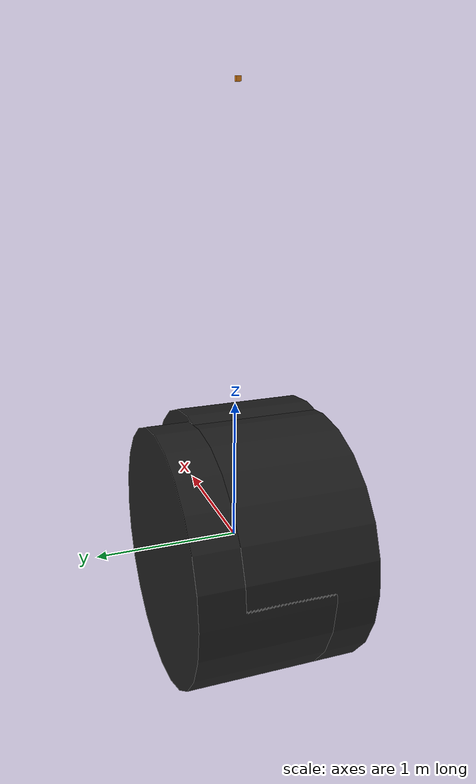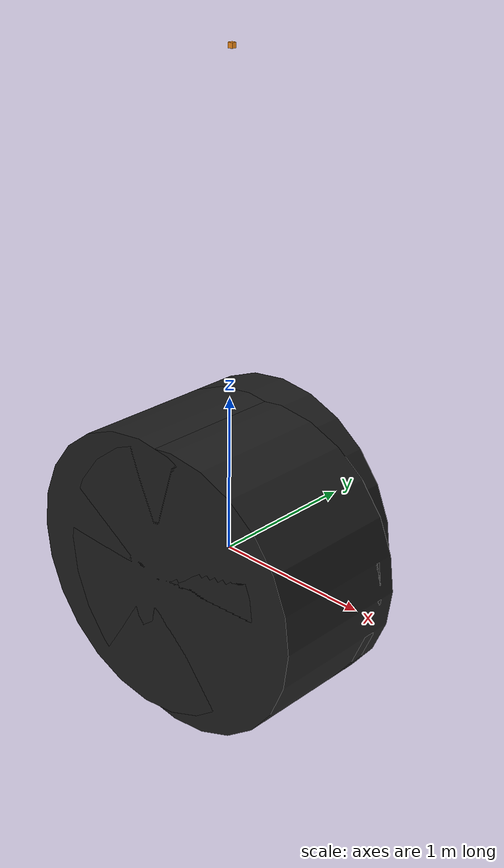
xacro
<?xml version='1.0'?>

<robot name="skidbot" xmlns:xacro="http://www.ros.org/wiki/xacro">

  <xacro:include filename="$(find gcamp_gazebo)/urdf/stella_bot.gazebo" />

  <link name="base_link"></link>

  <joint name="base_link_joint" type="fixed">
    <origin xyz="0 0 0" rpy="0 0 0" />
    <parent link="base_link"/>
    <child link="chassis" />
  </joint>

  <link name='chassis'>
    <pose>0 0 0.1 0 0 0</pose>

    <inertial>
      <mass value="15.0"/>
      <origin xyz="0.0 0 0" rpy=" 0 0 0"/>
      <inertia ixx="0.1" ixy="0" ixz="0" iyy="0.1" iyz="0" izz="0.1" />
    </inertial>

    <collision name='collision'>
      <origin xyz="0 0 0" rpy=" 0 0 0"/>
      <geometry>
        <box size=".44 .38 .204"/>
      </geometry>
    </collision>

    <visual name='chassis_visual'>
      <origin xyz="0 0 0" rpy=" 0 0 0"/>
      <geometry>
        <box size=".44 .38 .204"/>
      </geometry>
    </visual>
  </link>

  <link name="front_left_wheel">
    <inertial>
      <mass value="8.0"/>
      <origin xyz="0.0 0 0" rpy=" 0 1.5707 1.5707"/>
      <inertia ixx="0.1" ixy="0" ixz="0" iyy="0.1" iyz="0" izz="0.1" />
    </inertial>

    <collision>
      <origin xyz="0.0 0 0" rpy=" 0 1.5707 1.5707"/>
      <geometry>
        <cylinder length="0.05" radius="0.1"/>
      </geometry>
    </collision>
  </link>

  <link name="back_left_wheel">
    <inertial>
      <mass value="8.0"/>
      <origin xyz="0.0 0 0" rpy=" 0 1.5707 1.5707"/>
      <inertia ixx="0.1" ixy="0" ixz="0" iyy="0.1" iyz="0" izz="0.1" />
    </inertial>

    <collision>
      <origin xyz="0.0 0 0" rpy=" 0 1.5707 1.5707"/>
      <geometry>
        <cylinder length="0.09" radius="0.09"/>
      </geometry>
    </collision>
  </link>

  <link name="left_track">
    <visual name="left_track_visual">
      <origin rpy="1.5708 0 1.5708" xyz="0 0 0"/>
      <geometry>
        <box size="0.44 0.38 0.204"/>
      </geometry>
    </visual>

    <visual name="left_track_visual_1">
      <origin rpy="1.5708 -0 0" xyz="0.13 0 0"/>
      <geometry>
        <cylinder length="0.09" radius="0.9"/>
      </geometry>
    </visual>

    <visual name="left_track_visual_2">
      <origin rpy="1.5708 -0 0" xyz="-0.13 0 0"/>
      <geometry>
        <cylinder length="0.9" radius="0.9"/>
      </geometry>
    </visual>
  </link>

  <link name="front_right_wheel">
    <inertial>
      <mass value="8.0"/>
      <origin xyz="0.0 0 0" rpy=" 0 1.5707 1.5707"/>
      <inertia ixx="0.1" ixy="0" ixz="0" iyy="0.1" iyz="0" izz="0.1" />
    </inertial>

    <collision>
      <origin xyz="0.0 0 0" rpy=" 0 1.5707 1.5707"/>
      <geometry>
        <cylinder length="0.9" radius="0.9"/>
      </geometry>
    </collision>
  </link>

  <link name="back_right_wheel">
    <inertial>
      <mass value="8.0"/>
      <origin xyz="0.0 0 0" rpy=" 0 1.5707 1.5707"/>
      <inertia ixx="0.1" ixy="0" ixz="0" iyy="0.1" iyz="0" izz="0.1" />
    </inertial>

    <collision>
      <origin xyz="0.0 0 0" rpy=" 0 1.5707 1.5707"/>
      <geometry>
        <cylinder length="0.05" radius="0.1"/>
      </geometry>
    </collision>
  </link>

  <link name="right_track">
    <visual name="right_track_visual">
      <origin rpy="1.5708 0 1.5708" xyz="0 0 0"/>
      <geometry>
        <box size="0.44 0.38 0.204"/>
      </geometry>
    </visual>

    <visual name="right_track_visual_1">
      <origin rpy="1.5708 -0 0" xyz="0.13 0 0"/>
      <geometry>
        <cylinder length="0.9" radius="0.9"/>
      </geometry>
    </visual>

    <visual name="right_track_visual_2">
      <origin rpy="1.5708 -0 0" xyz="-0.13 0 0"/>
      <geometry>
        <cylinder length="0.9" radius="0.9"/>
      </geometry>
    </visual>
  </link>

  <link name="camera">
    <inertial>
      <mass value="0.1"/>
      <origin xyz="0.05 0.05 0.05" rpy=" 0 0 0"/>
      <inertia ixx="1e-6" ixy="0" ixz="0" iyy="1e-6" iyz="0" izz="1e-6" />
    </inertial>

    <visual name="camera_visual">
      <origin xyz="0 0 0" rpy="0 0 0" />
      <geometry>
        <box size="0.05 0.05 0.05"/>
      </geometry>
    </visual>

    <collision name="camera_colision">
      <origin xyz="0 0 0" rpy="0 0 0" />
      <geometry>
        <box size="0.05 0.05 0.05"/>
      </geometry>
    </collision>
  </link>

  <link name="hokuyo">
    <inertial>
      <mass value="1e-5"/>
      <origin xyz="0 0 0" rpy=" 0 0 0"/>
      <inertia ixx="1e-6" ixy="0" ixz="0" iyy="1e-6" iyz="0" izz="1e-6" />
    </inertial>

    <visual name="hokuyo_visual">
      <origin xyz="0 0 0" rpy="0 0 0" />
      <geometry>
        <box size="0.05 0.05 0.05"/>
      </geometry>
    </visual>

    <collision name="hokuyo_colision">
      <origin xyz="0 0 0" rpy="0 0 0" />
      <geometry>
        <box size="0.1 0.1 0.1"/>
      </geometry>
    </collision>
  </link>
<!--add imu-->
  <joint name="imu_joint" type="fixed">
        <parent link="base_link"/>
        <child link="imu_link"/>
        <origin xyz="0 0 3" rpy="0 0 0"/>
        <axis xyz="0 1 0"/>
    </joint>

    <link name="imu_link">
        <collision>
            <origin xyz="0 0 0" rpy="0 0 0"/>
            <geometry>
	            <box size="0.1 0.1 0.1"/>
            </geometry>
        </collision>

        <visual>
            <origin xyz="0 0 0" rpy="0 0 0"/>
            <geometry>
	            <box size="0.03 0.03 0.03"/>
            </geometry>
            <material name="orange"/>
        </visual>

        <inertial>
            <origin xyz="0 0 0" rpy="0 0 0"/>
            <mass value="0.1"/>
            <inertia
	        ixx="0.00016667" ixy="0.0" ixz="0.0"
	        iyy="0.00016667" iyz="0.0"
	        izz="0.00016667"/>
        </inertial>
    </link>
<!--add imu-->
  <joint type="continuous" name="front_left_wheel_joint">
    <origin xyz="0.13 0.15 0" rpy="0 0 0"/>
    <child link="front_left_wheel"/>
    <parent link="chassis"/>
    <axis xyz="0 1 0" rpy="0 0 0"/>
    <limit effort="10000" velocity="1000"/>
    <dynamics damping="1.0" friction="1.0"/>
  </joint>

  <joint type="continuous" name="front_right_wheel_joint">
    <origin xyz="0.13 -0.15 0" rpy="0 0 0"/>
    <child link="front_right_wheel"/>
    <parent link="chassis"/>
    <axis xyz="0 1 0" rpy="0 0 0"/>
    <limit effort="10000" velocity="1000"/>
    <dynamics damping="1.0" friction="1.0"/>
  </joint>

  <joint type="continuous" name="back_left_wheel_joint">
    <origin xyz="-0.13 0.15 0" rpy="0 0 0"/>
    <child link="back_left_wheel"/>
    <parent link="chassis"/>
    <axis xyz="0 1 0" rpy="0 0 0"/>
    <limit effort="10000" velocity="1000"/>
    <dynamics damping="1.0" friction="1.0"/>
  </joint>

  <joint type="continuous" name="back_right_wheel_joint">
    <origin xyz="-0.13 -0.15 0" rpy="0 0 0"/>
    <child link="back_right_wheel"/>
    <parent link="chassis"/>
    <axis xyz="0 1 0" rpy="0 0 0"/>
    <limit effort="10000" velocity="1000"/>
    <dynamics damping="1.0" friction="1.0"/>
  </joint>

  <joint name="right_track_j" type="fixed">
    <origin rpy="0 0 0" xyz="0 -0.15 0"/>
    <child link="right_track"/>
    <parent link="chassis"/>
  </joint>

  <joint name="left_track_j" type="fixed">
    <origin rpy="0 0 0" xyz="0 0.15 0"/>
    <child link="left_track"/>
    <parent link="chassis"/>
  </joint>

  <joint type="fixed" name="camera_joint">
    <origin xyz="0.2 0 0" rpy="0 0 0"/>
    <child link="camera"/>
    <parent link="chassis"/>
    <axis xyz="0 1 0" rpy="0 0 0"/>
  </joint>

  <joint type="fixed" name="hokuyo_joint">
    <origin xyz="0.15 0 0.1" rpy="0 0 0"/>
    <child link="hokuyo"/>
    <parent link="chassis"/>
    <axis xyz="0 1 0" rpy="0 0 0"/>
  </joint>

  <gazebo reference="chassis">
    <material>Gazebo/Green</material>
  </gazebo>

  <gazebo reference="left_track">
    <material>Gazebo/Black</material>
  </gazebo>

  <gazebo reference="right_track">
    <material>Gazebo/Black</material>
  </gazebo>

  <gazebo reference="camera">
    <material>Gazebo/Gray</material>
  </gazebo>

  <gazebo reference="hokuyo">
    <material>Gazebo/Black</material>
  </gazebo>

</robot>
